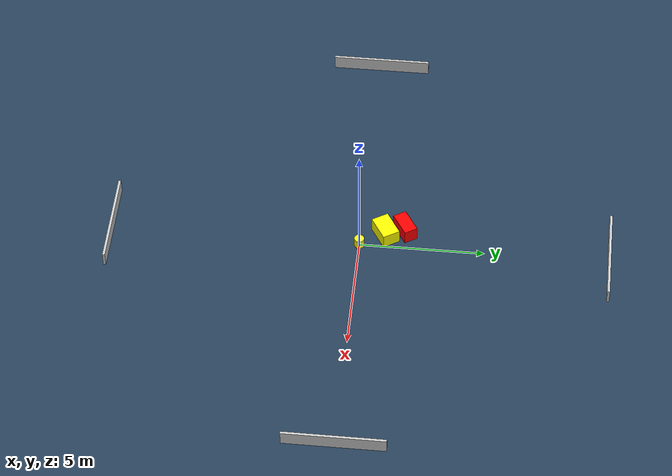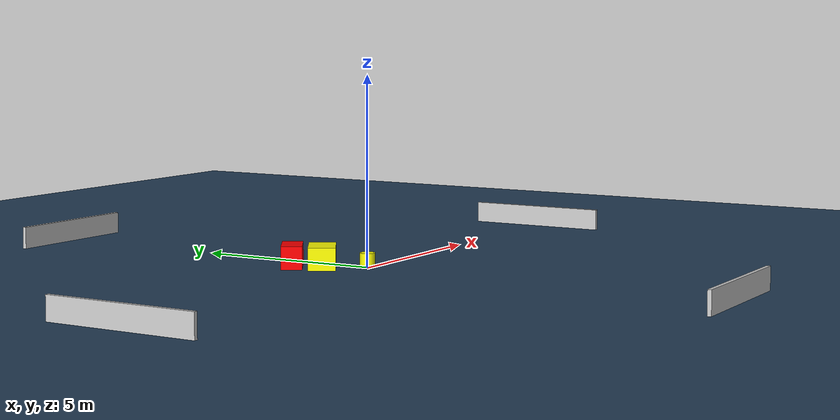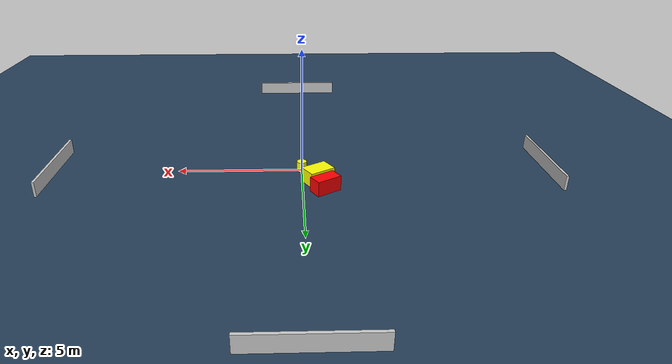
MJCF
<?xml version="1.0" ?>
<mujoco model="generated_environment">
  <option timestep="0.01" integrator="RK4" cone="elliptic"/>
  <default>
    <geom density="1"/>
  </default>
  <asset>
    <texture builtin="gradient" height="3072" name="skybox" rgb1="0.3 0.5 0.7" rgb2="0 0 0" type="skybox" width="512"/>
    <texture builtin="checker" height="300" name="groundplane" rgb1="0.2 0.3 0.4" rgb2="0.1 0.2 0.3" type="2d" width="300"/>
    <material name="groundplane" reflectance="0.2" texrepeat="5 5" texture="groundplane"/>
  </asset>
  <worldbody>
    <light dir="0 0 -1" directional="true" pos="0 0 1.5"/>
    <geom condim="3" friction="0.5 0.005 0.001" material="groundplane" name="floor" pos="0 0 0" size="0 0 0.05" type="plane"/>
    <body name="walls">
      <geom name="wall_1" condim="4" pos="-10.0 0.0 0.3" rgba="0.800000011920929 0.800000011920929 0.800000011920929 1.0" size="0.05 2.0 0.3" type="box"/>
      <geom name="wall_2" condim="4" pos="10.0 0.0 0.3" rgba="0.800000011920929 0.800000011920929 0.800000011920929 1.0" size="0.05 2.0 0.3" type="box"/>
      <geom name="wall_3" condim="4" pos="0.0 -10.0 0.3" rgba="0.800000011920929 0.800000011920929 0.800000011920929 1.0" size="2.0 0.05 0.3" type="box"/>
      <geom name="wall_4" condim="4" pos="0.0 10.0 0.3" rgba="0.800000011920929 0.800000011920929 0.800000011920929 1.0" size="2.0 0.05 0.3" type="box"/>
    </body>
    <body name="robot">
      <joint name="joint_x" type="slide" pos="0 0 0" axis="1 0 0"/>
      <joint name="joint_y" type="slide" pos="0 0 0" axis="0 1 0"/>
      <geom name="robot" type="cylinder" pos="0.0 0.0 0.2" size="0.2 0.2 0.0" mass="5.0" friction="1.0 0.005 0.0001" condim="4" rgba="1.0 1.0 0.0 1.0"/>
    </body>
    <body name="obstacle_1_movable">
      <geom name="obstacle_1_movable" condim="4" pos="-0.6114987820444228 1.0037604579775228 0.3" euler="0 0 211.35690315313602" friction="0.0 0.005 0.001" rgba="1.0 1.0 0.0 1.0" size="0.5337702994148311 0.3573128495259714 0.3" type="box" mass="0.1"/>
      <joint type="free"/>
    </body>
    <body name="obstacle_2_static">
      <geom name="obstacle_2_static" condim="4" pos="-0.8608389226902258 1.772560305189221 0.3" euler="0 0 31.539766361511795" friction="0.0 0.005 0.001" rgba="1.0 0.0 0.0 1.0" size="0.5160796286175107 0.27617200469002745 0.3" type="box"/>
    </body>
  </worldbody>
  <actuator>
    <motor name="actuator_x" joint="joint_x" gear="1" ctrlrange="-1 1"/>
    <motor name="actuator_y" joint="joint_y" gear="1" ctrlrange="-1 1"/>
  </actuator>
</mujoco>
